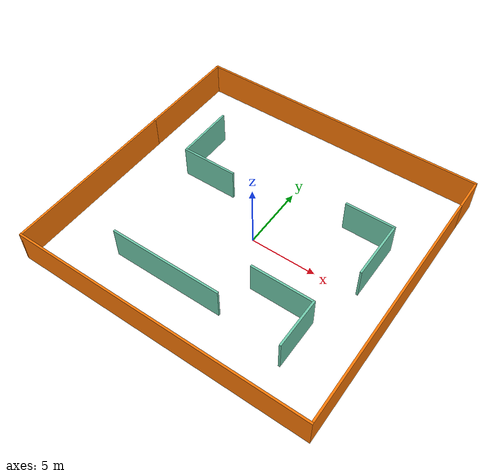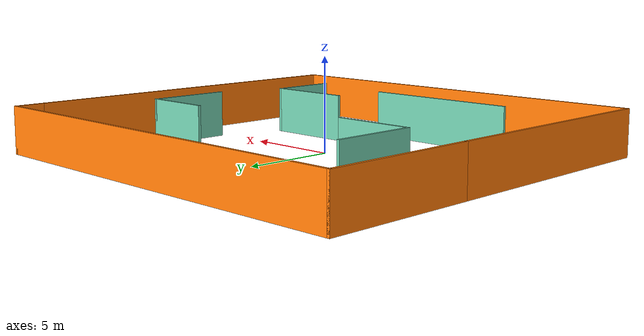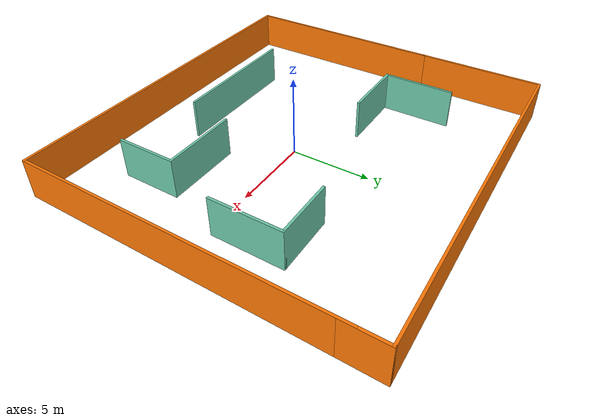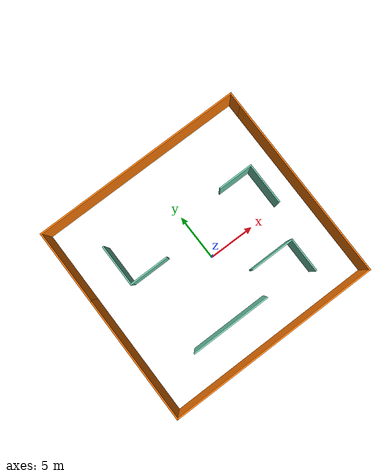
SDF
<?xml version='1.0'?>
<sdf version='1.7'>
  <model name='environment'>
    <pose>-0.300416 0.727904 0 0 -0 0</pose>
    <link name='Wall_55'>
      <collision name='Wall_55_Collision'>
        <geometry>
          <box>
            <size>13.5 0.15 2.5</size>
          </box>
        </geometry>
        <pose>0 0 1.25 0 -0 0</pose>
      </collision>
      <visual name='Wall_55_Visual'>
        <pose>0 0 1.25 0 -0 0</pose>
        <geometry>
          <box>
            <size>13.5 0.15 2.5</size>
          </box>
        </geometry>
        <material>
          <script>
            <uri>file://media/materials/scripts/gazebo.material</uri>
            <name>Gazebo/Grey</name>
          </script>
          <ambient>0.996078 0.47451 0.0196078 1</ambient>
        </material>
        <meta>
          <layer>0</layer>
        </meta>
      </visual>
      <pose>-11.175 -3.925 0 0 -0 -1.5708</pose>
    </link>
    <link name='Wall_56'>
      <collision name='Wall_56_Collision'>
        <geometry>
          <box>
            <size>22.5 0.15 2.5</size>
          </box>
        </geometry>
        <pose>0 0 1.25 0 -0 0</pose>
      </collision>
      <visual name='Wall_56_Visual'>
        <pose>0 0 1.25 0 -0 0</pose>
        <geometry>
          <box>
            <size>22.5 0.15 2.5</size>
          </box>
        </geometry>
        <material>
          <script>
            <uri>file://media/materials/scripts/gazebo.material</uri>
            <name>Gazebo/Grey</name>
          </script>
          <ambient>0.996078 0.47451 0.0196078 1</ambient>
        </material>
        <meta>
          <layer>0</layer>
        </meta>
      </visual>
      <pose>0 -10.6 0 0 -0 0</pose>
    </link>
    <link name='Wall_57'>
      <collision name='Wall_57_Collision'>
        <geometry>
          <box>
            <size>19.75 0.15 2.5</size>
          </box>
        </geometry>
        <pose>0 0 1.25 0 -0 0</pose>
      </collision>
      <visual name='Wall_57_Visual'>
        <pose>0 0 1.25 0 -0 0</pose>
        <geometry>
          <box>
            <size>19.75 0.15 2.5</size>
          </box>
        </geometry>
        <material>
          <script>
            <uri>file://media/materials/scripts/gazebo.material</uri>
            <name>Gazebo/Grey</name>
          </script>
          <ambient>0.996078 0.47451 0.0196078 1</ambient>
        </material>
        <meta>
          <layer>0</layer>
        </meta>
      </visual>
      <pose>11.175 -0.8 0 0 -0 1.5708</pose>
    </link>
    <link name='Wall_61'>
      <collision name='Wall_61_Collision'>
        <geometry>
          <box>
            <size>8 0.15 2.5</size>
          </box>
        </geometry>
        <pose>0 0 1.25 0 -0 0</pose>
      </collision>
      <visual name='Wall_61_Visual'>
        <pose>0 0 1.25 0 -0 0</pose>
        <geometry>
          <box>
            <size>8 0.15 2.5</size>
          </box>
        </geometry>
        <material>
          <script>
            <uri>file://media/materials/scripts/gazebo.material</uri>
            <name>Gazebo/Grey</name>
          </script>
          <ambient>0.996078 0.47451 0.0196078 1</ambient>
        </material>
        <meta>
          <layer>0</layer>
        </meta>
      </visual>
      <pose>-11.175 6.675 0 0 -0 1.5708</pose>
    </link>
    <link name='Wall_62'>
      <collision name='Wall_62_Collision'>
        <geometry>
          <box>
            <size>22.5 0.15 2.5</size>
          </box>
        </geometry>
        <pose>0 0 1.25 0 -0 0</pose>
      </collision>
      <visual name='Wall_62_Visual'>
        <pose>0 0 1.25 0 -0 0</pose>
        <geometry>
          <box>
            <size>22.5 0.15 2.5</size>
          </box>
        </geometry>
        <material>
          <script>
            <uri>file://media/materials/scripts/gazebo.material</uri>
            <name>Gazebo/Grey</name>
          </script>
          <ambient>0.996078 0.47451 0.0196078 1</ambient>
        </material>
        <meta>
          <layer>0</layer>
        </meta>
      </visual>
      <pose>0 10.6 0 0 -0 0</pose>
    </link>
    <link name='Wall_63'>
      <collision name='Wall_63_Collision'>
        <geometry>
          <box>
            <size>2.5 0.15 2.5</size>
          </box>
        </geometry>
        <pose>0 0 1.25 0 -0 0</pose>
      </collision>
      <visual name='Wall_63_Visual'>
        <pose>0 0 1.25 0 -0 0</pose>
        <geometry>
          <box>
            <size>2.5 0.15 2.5</size>
          </box>
        </geometry>
        <material>
          <script>
            <uri>file://media/materials/scripts/gazebo.material</uri>
            <name>Gazebo/Grey</name>
          </script>
          <ambient>0.996078 0.47451 0.0196078 1</ambient>
        </material>
        <meta>
          <layer>0</layer>
        </meta>
      </visual>
      <pose>11.175 9.425 0 0 -0 -1.5708</pose>
    </link>
    <link name='Wall_65'>
      <collision name='Wall_65_Collision'>
        <geometry>
          <box>
            <size>4.5 0.15 2.5</size>
          </box>
        </geometry>
        <pose>0 0 1.25 0 -0 0</pose>
      </collision>
      <visual name='Wall_65_Visual'>
        <pose>0 0 1.25 0 -0 0</pose>
        <geometry>
          <box>
            <size>4.5 0.15 2.5</size>
          </box>
        </geometry>
        <material>
          <script>
            <uri>file://media/materials/scripts/gazebo.material</uri>
            <name>Gazebo/Grey</name>
          </script>
          <ambient>0.435294 0.796078 0.67451 1</ambient>
        </material>
        <meta>
          <layer>0</layer>
        </meta>
      </visual>
      <pose>-7.28296 3.91589 0 0 -0 -1.5708</pose>
    </link>
    <link name='Wall_66'>
      <collision name='Wall_66_Collision'>
        <geometry>
          <box>
            <size>4.25 0.15 2.5</size>
          </box>
        </geometry>
        <pose>0 0 1.25 0 -0 0</pose>
      </collision>
      <visual name='Wall_66_Visual'>
        <pose>0 0 1.25 0 -0 0</pose>
        <geometry>
          <box>
            <size>4.25 0.15 2.5</size>
          </box>
        </geometry>
        <material>
          <script>
            <uri>file://media/materials/scripts/gazebo.material</uri>
            <name>Gazebo/Grey</name>
          </script>
          <ambient>0.435294 0.796078 0.67451 1</ambient>
        </material>
        <meta>
          <layer>0</layer>
        </meta>
      </visual>
      <pose>-5.23296 1.74089 0 0 -0 0</pose>
    </link>
    <link name='Wall_68'>
      <collision name='Wall_68_Collision'>
        <geometry>
          <box>
            <size>3.75 0.15 2.5</size>
          </box>
        </geometry>
        <pose>0 0 1.25 0 -0 0</pose>
      </collision>
      <visual name='Wall_68_Visual'>
        <pose>0 0 1.25 0 -0 0</pose>
        <geometry>
          <box>
            <size>3.75 0.15 2.5</size>
          </box>
        </geometry>
        <material>
          <script>
            <uri>file://media/materials/scripts/gazebo.material</uri>
            <name>Gazebo/Grey</name>
          </script>
          <ambient>0.435294 0.796078 0.67451 1</ambient>
        </material>
        <meta>
          <layer>0</layer>
        </meta>
      </visual>
      <pose>6.6086 3.89729 0 0 -0 0</pose>
    </link>
    <link name='Wall_69'>
      <collision name='Wall_69_Collision'>
        <geometry>
          <box>
            <size>4.5 0.15 2.5</size>
          </box>
        </geometry>
        <pose>0 0 1.25 0 -0 0</pose>
      </collision>
      <visual name='Wall_69_Visual'>
        <pose>0 0 1.25 0 -0 0</pose>
        <geometry>
          <box>
            <size>4.5 0.15 2.5</size>
          </box>
        </geometry>
        <material>
          <script>
            <uri>file://media/materials/scripts/gazebo.material</uri>
            <name>Gazebo/Grey</name>
          </script>
          <ambient>0.435294 0.796078 0.67451 1</ambient>
        </material>
        <meta>
          <layer>0</layer>
        </meta>
      </visual>
      <pose>8.4086 1.72229 0 0 -0 -1.5708</pose>
    </link>
    <link name='Wall_71'>
      <collision name='Wall_71_Collision'>
        <geometry>
          <box>
            <size>8.5 0.15 2.5</size>
          </box>
        </geometry>
        <pose>0 0 1.25 0 -0 0</pose>
      </collision>
      <visual name='Wall_71_Visual'>
        <pose>0 0 1.25 0 -0 0</pose>
        <geometry>
          <box>
            <size>8.5 0.15 2.5</size>
          </box>
        </geometry>
        <material>
          <script>
            <uri>file://media/materials/scripts/gazebo.material</uri>
            <name>Gazebo/Grey</name>
          </script>
          <ambient>0.435294 0.796078 0.67451 1</ambient>
        </material>
        <meta>
          <layer>0</layer>
        </meta>
      </visual>
      <pose>-2.19842 -6.85672 0 0 -0 0</pose>
    </link>
    <link name='Wall_73'>
      <collision name='Wall_73_Collision'>
        <geometry>
          <box>
            <size>4.75 0.15 2.5</size>
          </box>
        </geometry>
        <pose>0 0 1.25 0 -0 0</pose>
      </collision>
      <visual name='Wall_73_Visual'>
        <pose>0 0 1.25 0 -0 0</pose>
        <geometry>
          <box>
            <size>4.75 0.15 2.5</size>
          </box>
        </geometry>
        <material>
          <script>
            <uri>file://media/materials/scripts/gazebo.material</uri>
            <name>Gazebo/Grey</name>
          </script>
          <ambient>0.435294 0.796078 0.67451 1</ambient>
        </material>
        <meta>
          <layer>0</layer>
        </meta>
      </visual>
      <pose>4.8615 -4.02108 0 0 -0 0</pose>
    </link>
    <link name='Wall_74'>
      <collision name='Wall_74_Collision'>
        <geometry>
          <box>
            <size>3.75 0.15 2.5</size>
          </box>
        </geometry>
        <pose>0 0 1.25 0 -0 0</pose>
      </collision>
      <visual name='Wall_74_Visual'>
        <pose>0 0 1.25 0 -0 0</pose>
        <geometry>
          <box>
            <size>3.75 0.15 2.5</size>
          </box>
        </geometry>
        <material>
          <script>
            <uri>file://media/materials/scripts/gazebo.material</uri>
            <name>Gazebo/Grey</name>
          </script>
          <ambient>0.435294 0.796078 0.67451 1</ambient>
        </material>
        <meta>
          <layer>0</layer>
        </meta>
      </visual>
      <pose>7.1615 -5.82108 0 0 -0 -1.5708</pose>
    </link>
    <static>1</static>
  </model>
</sdf>
